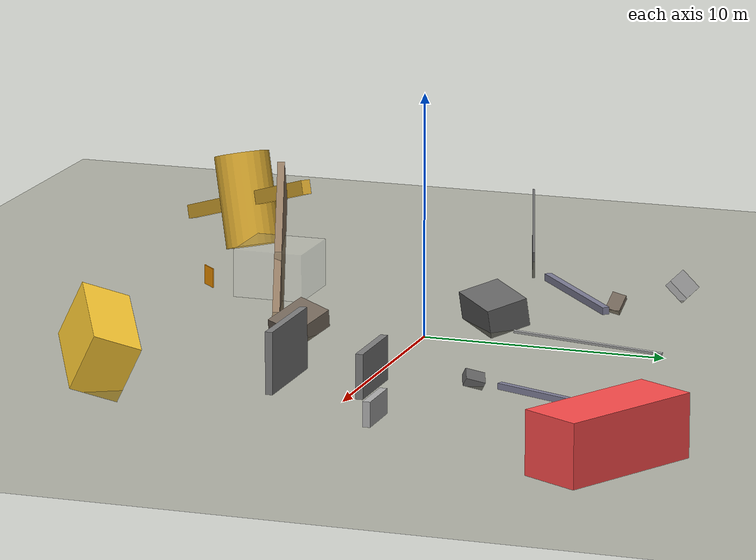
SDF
<?xml version='1.0' encoding='ASCII'?>
<sdf version='1.7'>
  <world name='damaged_construction_site'>
    <gravity>0 0 -9.8</gravity>
    <physics type='ode'>
      <max_step_size>0.005</max_step_size>
      <real_time_factor>1</real_time_factor>
      <max_contacts>10</max_contacts>
    </physics>
    <scene>
      <ambient>0.6 0.6 0.5 1</ambient>
      <background>0.4 0.4 0.3 1</background>
      <shadows>1</shadows>
      <grid>false</grid>
    </scene>

    <!-- Dramatic lighting for disaster scene -->
    <light type="directional" name="sun">
      <cast_shadows>1</cast_shadows>
      <pose>-10 -8 15 0 0.3 0</pose>
      <diffuse>0.8 0.7 0.6 1</diffuse>
      <specular>0.5 0.5 0.4 1</specular>
      <direction>0.3 0.3 -1</direction>
    </light>

    <!-- Emergency lighting -->
    <light type="spot" name="emergency_light_1">
      <cast_shadows>0</cast_shadows>
      <pose>5 5 3 0 0.5 0</pose>
      <diffuse>1 0.3 0.1 1</diffuse>
      <specular>1 0.3 0.1 1</specular>
      <direction>0 0 -1</direction>
      <spot>
        <inner_angle>0.5</inner_angle>
        <outer_angle>1.0</outer_angle>
        <falloff>1.0</falloff>
      </spot>
    </light>

    <!-- Ground plane with debris texture -->
    <model name='damaged_ground'>
      <static>true</static>
      <link name='link'>
        <collision name='collision'>
          <geometry>
            <plane>
              <normal>0.0 0.0 1</normal>
              <size>50 50</size>
            </plane>
          </geometry>
        </collision>
        <visual name='visual'>
          <geometry>
            <plane>
              <normal>0.0 0.0 1</normal>
              <size>50 50</size>
            </plane>
          </geometry>
          <material>
            <ambient>0.3 0.3 0.2 1</ambient>
            <diffuse>0.4 0.4 0.3 1</diffuse>
          </material>
        </visual>
      </link>
      <pose>0 0 0 0 0 0</pose>
    </model>

    <!-- Collapsed building structure -->
    <model name='collapsed_building_1'>
      <static>true</static>
      <link name='wall_collapsed'>
        <collision name='collision'>
          <geometry>
            <box>
              <size>8 0.3 3</size>
            </box>
          </geometry>
        </collision>
        <visual name='visual'>
          <geometry>
            <box>
              <size>8 0.3 3</size>
            </box>
          </geometry>
          <material>
            <ambient>0.5 0.4 0.3 1</ambient>
            <diffuse>0.6 0.5 0.4 1</diffuse>
          </material>
        </visual>
      </link>
      <pose>-5 -8 1.2 0 0.8 0.3</pose>
    </model>

    <!-- Partially collapsed concrete wall -->
    <model name='damaged_wall_1'>
      <static>true</static>
      <link name='wall_section_1'>
        <collision name='collision'>
          <geometry>
            <box>
              <size>4 0.3 2.5</size>
            </box>
          </geometry>
        </collision>
        <visual name='visual'>
          <geometry>
            <box>
              <size>4 0.3 2.5</size>
            </box>
          </geometry>
          <material>
            <ambient>0.4 0.4 0.4 1</ambient>
            <diffuse>0.5 0.5 0.5 1</diffuse>
          </material>
        </visual>
      </link>
      <pose>8 -3 1.25 0 0 0</pose>
    </model>

    <!-- Damaged wall section 2 -->
    <model name='damaged_wall_2'>
      <static>true</static>
      <link name='wall_section_2'>
        <collision name='collision'>
          <geometry>
            <box>
              <size>3 0.3 1.8</size>
            </box>
          </geometry>
        </collision>
        <visual name='visual'>
          <geometry>
            <box>
              <size>3 0.3 1.8</size>
            </box>
          </geometry>
          <material>
            <ambient>0.4 0.4 0.4 1</ambient>
            <diffuse>0.5 0.5 0.5 1</diffuse>
          </material>
        </visual>
      </link>
      <pose>8 0.5 0.9 0 0 0</pose>
    </model>

    <!-- Debris pile 1 - Large concrete chunks -->
    <model name='debris_pile_1'>
      <static>true</static>
      <link name='debris_1'>
        <collision name='collision'>
          <geometry>
            <box>
              <size>2.5 1.8 1.2</size>
            </box>
          </geometry>
        </collision>
        <visual name='visual'>
          <geometry>
            <box>
              <size>2.5 1.8 1.2</size>
            </box>
          </geometry>
          <material>
            <ambient>0.3 0.3 0.3 1</ambient>
            <diffuse>0.4 0.4 0.4 1</diffuse>
          </material>
        </visual>
      </link>
      <pose>-3 2 0.6 0.2 0.1 0.8</pose>
    </model>

    <!-- Debris pile 2 - Smaller rubble -->
    <model name='debris_pile_2'>
      <static>true</static>
      <link name='debris_2'>
        <collision name='collision'>
          <geometry>
            <box>
              <size>1.5 2 0.8</size>
            </box>
          </geometry>
        </collision>
        <visual name='visual'>
          <geometry>
            <box>
              <size>1.5 2 0.8</size>
            </box>
          </geometry>
          <material>
            <ambient>0.35 0.3 0.25 1</ambient>
            <diffuse>0.45 0.4 0.35 1</diffuse>
          </material>
        </visual>
      </link>
      <pose>1 -5 0.4 0.3 0.2 1.2</pose>
    </model>

    <!-- Scattered debris pieces -->
    <model name='debris_chunk_1'>
      <static>true</static>
      <link name='chunk'>
        <collision name='collision'>
          <geometry>
            <box>
              <size>0.8 0.6 0.4</size>
            </box>
          </geometry>
        </collision>
        <visual name='visual'>
          <geometry>
            <box>
              <size>0.8 0.6 0.4</size>
            </box>
          </geometry>
          <material>
            <ambient>0.3 0.3 0.3 1</ambient>
            <diffuse>0.4 0.4 0.4 1</diffuse>
          </material>
        </visual>
      </link>
      <pose>6 4 0.2 0.5 0.3 2.1</pose>
    </model>

    <model name='debris_chunk_2'>
      <static>true</static>
      <link name='chunk'>
        <collision name='collision'>
          <geometry>
            <box>
              <size>0.6 0.8 0.3</size>
            </box>
          </geometry>
        </collision>
        <visual name='visual'>
          <geometry>
            <box>
              <size>0.6 0.8 0.3</size>
            </box>
          </geometry>
          <material>
            <ambient>0.35 0.3 0.25 1</ambient>
            <diffuse>0.45 0.4 0.35 1</diffuse>
          </material>
        </visual>
      </link>
      <pose>-7 6 0.15 0.8 0.2 1.5</pose>
    </model>

    <!-- Damaged construction crane (simplified) -->
    <model name='damaged_crane'>
      <static>true</static>
      <link name='crane_base'>
        <collision name='collision'>
          <geometry>
            <cylinder>
              <radius>1.2</radius>
              <length>4</length>
            </cylinder>
          </geometry>
        </collision>
        <visual name='visual'>
          <geometry>
            <cylinder>
              <radius>1.2</radius>
              <length>4</length>
            </cylinder>
          </geometry>
          <material>
            <ambient>0.8 0.6 0.1 1</ambient>
            <diffuse>0.9 0.7 0.2 1</diffuse>
          </material>
        </visual>
      </link>
      <link name='crane_arm'>
        <collision name='collision'>
          <geometry>
            <box>
              <size>12 0.4 0.6</size>
            </box>
          </geometry>
        </collision>
        <visual name='visual'>
          <geometry>
            <box>
              <size>12 0.4 0.6</size>
            </box>
          </geometry>
          <material>
            <ambient>0.8 0.6 0.1 1</ambient>
            <diffuse>0.9 0.7 0.2 1</diffuse>
          </material>
        </visual>
      </link>
      <joint name='crane_joint' type='fixed'>
        <parent>crane_base</parent>
        <child>crane_arm</child>
      </joint>
      <pose>-12 -12 2 0 -0.3 0.8</pose>
    </model>

    <!-- Overturned construction vehicle -->
    <model name='overturned_excavator'>
      <static>true</static>
      <link name='body'>
        <collision name='collision'>
          <geometry>
            <box>
              <size>4 2.5 2</size>
            </box>
          </geometry>
        </collision>
        <visual name='visual'>
          <geometry>
            <box>
              <size>4 2.5 2</size>
            </box>
          </geometry>
          <material>
            <ambient>0.9 0.7 0.1 1</ambient>
            <diffuse>1.0 0.8 0.2 1</diffuse>
          </material>
        </visual>
      </link>
      <link name='arm'>
        <collision name='collision'>
          <geometry>
            <box>
              <size>3 0.5 0.5</size>
            </box>
          </geometry>
        </collision>
        <visual name='visual'>
          <geometry>
            <box>
              <size>3 0.5 0.5</size>
            </box>
          </geometry>
          <material>
            <ambient>0.9 0.7 0.1 1</ambient>
            <diffuse>1.0 0.8 0.2 1</diffuse>
          </material>
        </visual>
      </link>
      <joint name='excavator_joint' type='fixed'>
        <parent>body</parent>
        <child>arm</child>
      </joint>
      <pose>10 -10 1.5 1.2 0.3 0.5</pose>
    </model>

    <!-- Fallen scaffolding -->
    <model name='fallen_scaffolding'>
      <static>true</static>
      <link name='scaffold_1'>
        <collision name='collision'>
          <geometry>
            <box>
              <size>0.1 0.1 6</size>
            </box>
          </geometry>
        </collision>
        <visual name='visual'>
          <geometry>
            <box>
              <size>0.1 0.1 6</size>
            </box>
          </geometry>
          <material>
            <ambient>0.6 0.6 0.6 1</ambient>
            <diffuse>0.7 0.7 0.7 1</diffuse>
          </material>
        </visual>
      </link>
      <pose>4 8 1.5 1.5 0.2 0</pose>
    </model>

    <!-- Scattered construction materials -->
    <model name='steel_beam_1'>
      <static>true</static>
      <link name='beam'>
        <collision name='collision'>
          <geometry>
            <box>
              <size>6 0.3 0.3</size>
            </box>
          </geometry>
        </collision>
        <visual name='visual'>
          <geometry>
            <box>
              <size>6 0.3 0.3</size>
            </box>
          </geometry>
          <material>
            <ambient>0.4 0.4 0.5 1</ambient>
            <diffuse>0.5 0.5 0.6 1</diffuse>
          </material>
        </visual>
      </link>
      <pose>-8 4 0.15 0 0 0.7</pose>
    </model>

    <model name='steel_beam_2'>
      <static>true</static>
      <link name='beam'>
        <collision name='collision'>
          <geometry>
            <box>
              <size>4 0.25 0.25</size>
            </box>
          </geometry>
        </collision>
        <visual name='visual'>
          <geometry>
            <box>
              <size>4 0.25 0.25</size>
            </box>
          </geometry>
          <material>
            <ambient>0.4 0.4 0.5 1</ambient>
            <diffuse>0.5 0.5 0.6 1</diffuse>
          </material>
        </visual>
      </link>
      <pose>7 7 0.12 0 0 1.2</pose>
    </model>

    <!-- Concrete barriers (some fallen) -->
    <model name='barrier_1'>
      <static>true</static>
      <link name='barrier'>
        <collision name='collision'>
          <geometry>
            <box>
              <size>2 0.3 1</size>
            </box>
          </geometry>
        </collision>
        <visual name='visual'>
          <geometry>
            <box>
              <size>2 0.3 1</size>
            </box>
          </geometry>
          <material>
            <ambient>0.6 0.6 0.6 1</ambient>
            <diffuse>0.7 0.7 0.7 1</diffuse>
          </material>
        </visual>
      </link>
      <pose>-10 8 0.3 0.8 0 0</pose>
    </model>

    <model name='barrier_2'>
      <static>true</static>
      <link name='barrier'>
        <collision name='collision'>
          <geometry>
            <box>
              <size>2 0.3 1</size>
            </box>
          </geometry>
        </collision>
        <visual name='visual'>
          <geometry>
            <box>
              <size>2 0.3 1</size>
            </box>
          </geometry>
          <material>
            <ambient>0.6 0.6 0.6 1</ambient>
            <diffuse>0.7 0.7 0.7 1</diffuse>
          </material>
        </visual>
      </link>
      <pose>12 2 0.5 0 0 0</pose>
    </model>

    <!-- Damaged fence sections -->
    <model name='damaged_fence_1'>
      <static>true</static>
      <link name='fence'>
        <collision name='collision'>
          <geometry>
            <box>
              <size>4 0.1 1.5</size>
            </box>
          </geometry>
        </collision>
        <visual name='visual'>
          <geometry>
            <box>
              <size>4 0.1 1.5</size>
            </box>
          </geometry>
          <material>
            <ambient>0.3 0.3 0.3 1</ambient>
            <diffuse>0.4 0.4 0.4 1</diffuse>
          </material>
        </visual>
      </link>
      <pose>-15 0 0.75 0 0.5 0.3</pose>
    </model>

    <!-- Warning signs and equipment -->
    <model name='warning_sign_1'>
      <static>true</static>
      <link name='sign'>
        <collision name='collision'>
          <geometry>
            <box>
              <size>0.8 0.05 0.8</size>
            </box>
          </geometry>
        </collision>
        <visual name='visual'>
          <geometry>
            <box>
              <size>0.8 0.05 0.8</size>
            </box>
          </geometry>
          <material>
            <ambient>1 0.5 0 1</ambient>
            <diffuse>1 0.6 0 1</diffuse>
          </material>
        </visual>
      </link>
      <pose>-2 -10 1.2 0 0 0.8</pose>
    </model>

    <!-- Emergency vehicle (ambulance/fire truck representation) -->
    <model name='emergency_vehicle'>
      <static>true</static>
      <link name='vehicle_body'>
        <collision name='collision'>
          <geometry>
            <box>
              <size>6 2.5 2.5</size>
            </box>
          </geometry>
        </collision>
        <visual name='visual'>
          <geometry>
            <box>
              <size>6 2.5 2.5</size>
            </box>
          </geometry>
          <material>
            <ambient>1 0.2 0.2 1</ambient>
            <diffuse>1 0.3 0.3 1</diffuse>
          </material>
        </visual>
      </link>
      <pose>15 12 1.25 0 0 -0.5</pose>
    </model>

    <!-- Smoke/dust effect areas (represented as translucent boxes) -->
    <model name='dust_cloud_1'>
      <static>true</static>
      <link name='dust'>
        <visual name='visual'>
          <geometry>
            <box>
              <size>3 3 2</size>
            </box>
          </geometry>
          <material>
            <ambient>0.4 0.4 0.3 0.3</ambient>
            <diffuse>0.5 0.5 0.4 0.3</diffuse>
          </material>
        </visual>
      </link>
      <pose>-5 -8 1 0 0 0</pose>
    </model>

  </world>
</sdf>
